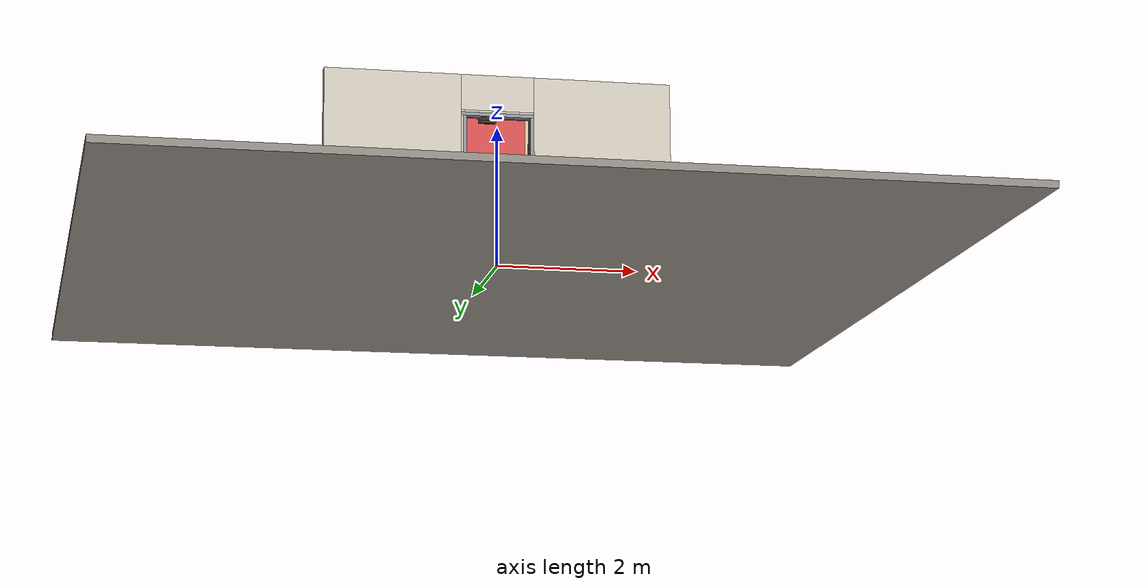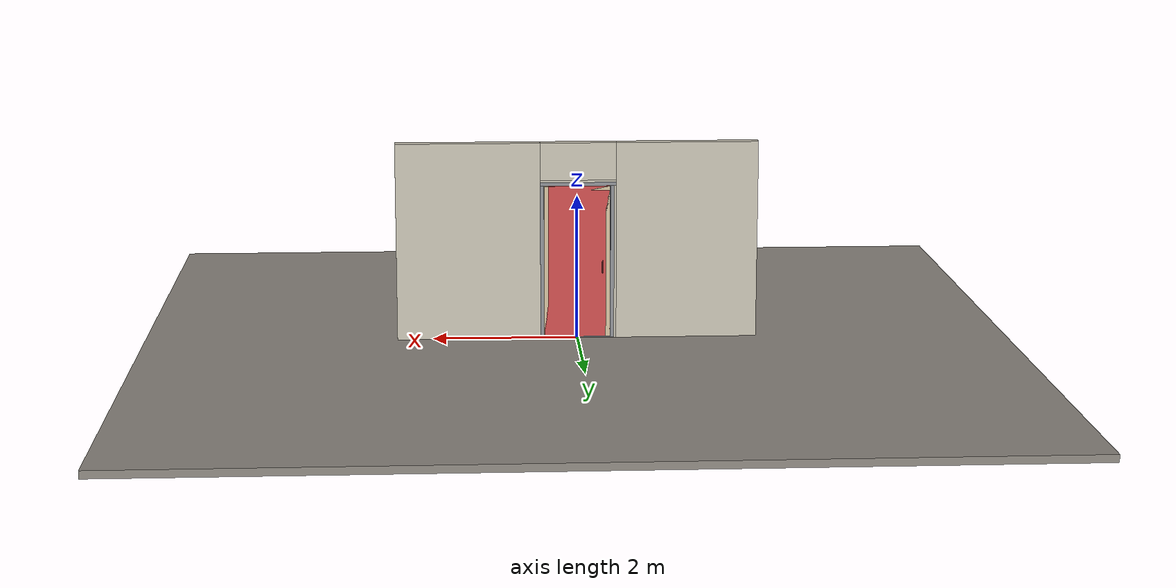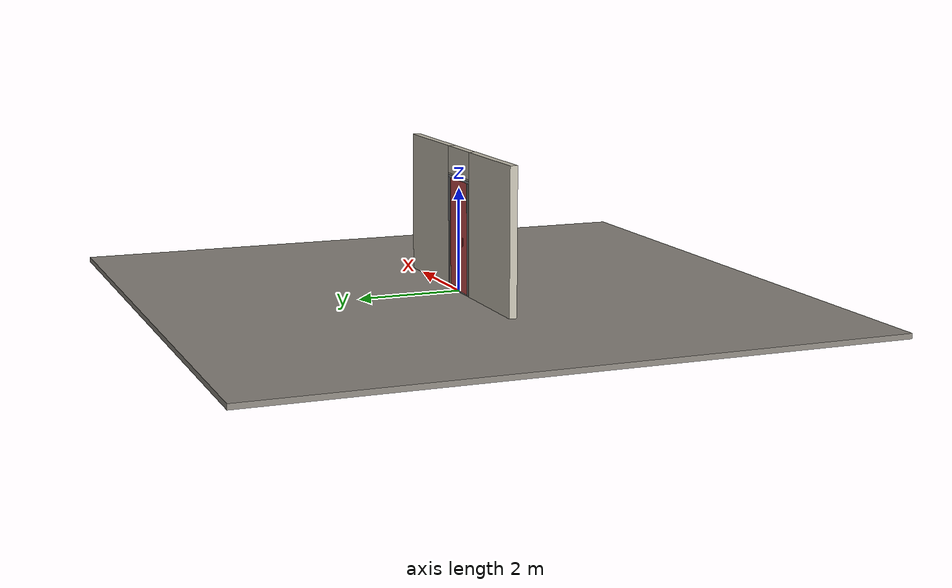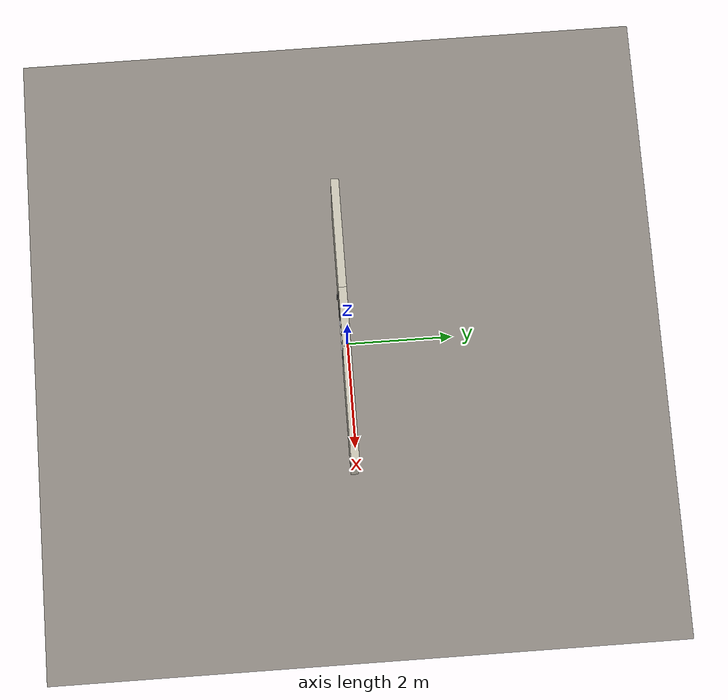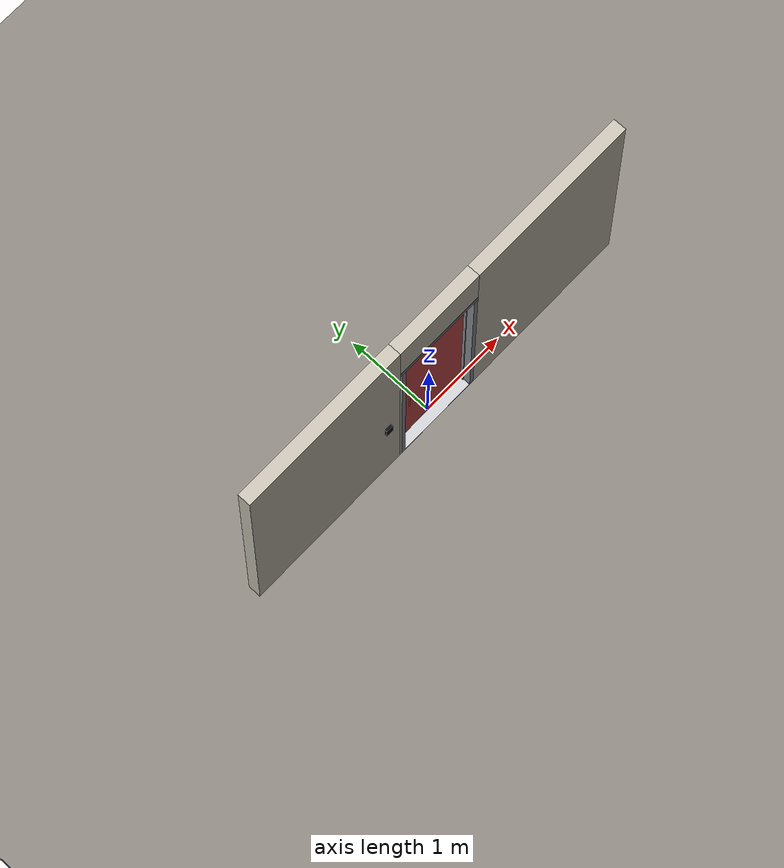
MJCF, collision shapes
<?xml version="1.0" ?>
<mujoco model="db0026_swing_single_full">
  <compiler angle="radian" meshdir="../../hardware" texturedir="../../textures" autolimits="true" inertiafromgeom="false"/>
  <option timestep="0.002" integrator="implicitfast" cone="elliptic" impratio="10" noslip_iterations="3">
    <flag multiccd="enable"/>
  </option>
  <size memory="16M"/>
  <default>
    <geom condim="4" solref="0.005 1" solimp="0.95 0.99 0.001"/>
    <joint solreflimit="0.005 1" solimplimit="0.95 0.99 0.001"/>
    <tendon solreflimit="0.005 1"/>
    <equality solref="0.002 1"/>
  </default>
  <visual>
    <headlight ambient="0.4 0.4 0.4" diffuse="0.7 0.7 0.7" specular="0.2 0.2 0.2"/>
    <quality shadowsize="4096"/>
    <map znear="0.01" zfar="60"/>
  </visual>
  <asset>
    <mesh name="hinge_a862eb1c73" file="hinge_a862eb1c73.obj"/>
    <mesh name="hinge_jamb_6edc213065" file="hinge_jamb_6edc213065.obj"/>
    <mesh name="pull_1e5d69a91a" file="pull_1e5d69a91a.obj"/>
    <material name="mat_floor" rgba="0.55 0.53 0.5 1" specular="0.2" shininess="0.15" reflectance="0"/>
    <material name="mat_wall" rgba="0.78 0.76 0.7 1" specular="0.2" shininess="0.1" reflectance="0"/>
    <material name="mat_leaf" rgba="0.82 0.75 0.62 1" specular="0.23" shininess="0.33" reflectance="0.02"/>
    <material name="mat_hinge" rgba="0.65 0.66 0.68 1" specular="0.74" shininess="0.5" reflectance="0.36"/>
    <material name="mat_op_stainless" rgba="0.75 0.76 0.77 1" specular="0.8" shininess="0.65" reflectance="0.4"/>
    <material name="mat_maglock" rgba="0.22 0.17 0.13 1" specular="0.8" shininess="0.6" reflectance="0.4"/>
    <material name="mat_frame" rgba="0.55 0.56 0.58 1" specular="0.8" shininess="0.55" reflectance="0.4"/>
    <material name="mat_threshold" rgba="0.8 0.81 0.83 1" specular="0.8" shininess="0.6" reflectance="0.4"/>
    <material name="mat_wallreader" rgba="0.05 0.05 0.05 1" specular="0.38" shininess="0.3" reflectance="0.12"/>
    <texture name="skybox" type="skybox" builtin="gradient" rgb1="0.6 0.7 0.85" rgb2="0.9 0.92 0.95" width="256" height="256"/>
  </asset>
  <worldbody>
    <light name="sun" pos="1.5 -2.5 4" dir="-0.3 0.5 -0.8" directional="true" diffuse="0.8 0.8 0.8" specular="0.3 0.3 0.3" castshadow="true"/>
    <light name="fill" pos="-1.5 2.5 3" dir="0.3 -0.5 -0.7" directional="true" diffuse="0.35 0.35 0.4" castshadow="false"/>
    <camera name="robot_view" pos="0 -2.690812 1.812087" xyaxes="1 0 0 0 0.26963 0.962964" fovy="52"/>
    <camera name="far_view" pos="0 2.584812 1.812087" xyaxes="-1 0 0 0 -0.26963 0.962964" fovy="52"/>
    <camera name="iso" pos="-2.004737 -2.268762 2.234138" xyaxes="0.741536 -0.670913 0 0.242917 0.268487 0.932151" fovy="46"/>
    <camera name="detail_handle" pos="-0.1715 -0.8725 1.296" xyaxes="0.97561 0.219512 0 -0.070934 0.315262 0.94635" fovy="38"/>
    <geom name="floor" type="box" size="6 6 0.05" pos="0 0 -0.05" material="mat_floor" group="0" contype="1" conaffinity="1" friction="0.8 0.005 0.0001" density="2400"/>
    <geom name="wall_left" type="box" size="0.97975 0.0725 1.3735" pos="-1.52025 -0.053 1.3735" material="mat_wall" group="0" contype="1" conaffinity="1" friction="0.6 0.005 0.0001" density="800"/>
    <geom name="wall_right" type="box" size="0.99475 0.0725 1.3735" pos="1.50525 -0.053 1.3735" material="mat_wall" group="0" contype="1" conaffinity="1" friction="0.6 0.005 0.0001" density="800"/>
    <geom name="wall_header" type="box" size="0.5255 0.0725 0.26" pos="-0.015 -0.053 2.487" material="mat_wall" group="0" contype="1" conaffinity="1" friction="0.6 0.005 0.0001" density="800"/>
    <geom name="hinge_0_jamb" type="mesh" mesh="hinge_jamb_6edc213065" pos="0.4575 0.0195 0.267" quat="0 0 0 1" material="mat_hinge" group="1" contype="0" conaffinity="0" density="7850"/>
    <geom name="hinge_1_jamb" type="mesh" mesh="hinge_jamb_6edc213065" pos="0.4575 0.0195 1.08" quat="0 0 0 1" material="mat_hinge" group="1" contype="0" conaffinity="0" density="7850"/>
    <geom name="hinge_2_jamb" type="mesh" mesh="hinge_jamb_6edc213065" pos="0.4575 0.0195 1.963" quat="0 0 0 1" material="mat_hinge" group="1" contype="0" conaffinity="0" density="7850"/>
    <geom name="leaf_maglock_body" type="box" size="0.125 0.025 0.02" pos="-0.1565 -0.0475 2.082" material="mat_maglock" group="0" contype="1" conaffinity="1" friction="0.6 0.005 0.0001" density="2000"/>
    <geom name="leaf_maglock_bracket" type="box" size="0.09 0.025 0.0225" pos="-0.1565 -0.0475 2.1245" material="mat_maglock" group="1" contype="0" conaffinity="0" density="7850"/>
    <geom name="jamb_hinge" type="box" size="0.025 0.0725 1.0735" pos="0.4855 -0.053 1.0735" material="mat_frame" group="0" contype="1" conaffinity="1" friction="0.6 0.005 0.0001" density="300"/>
    <geom name="jamb_strike" type="box" size="0.025 0.0725 1.0735" pos="-0.4855 -0.053 1.0735" material="mat_frame" group="0" contype="1" conaffinity="1" friction="0.6 0.005 0.0001" density="300"/>
    <geom name="stud_strike" type="box" size="0.015 0.0725 1.0735" pos="-0.5255 -0.053 1.0735" material="mat_wall" group="0" contype="1" conaffinity="1" friction="0.6 0.005 0.0001" density="500"/>
    <geom name="jamb_head" type="box" size="0.5255 0.0725 0.025" pos="-0.015 -0.053 2.172" material="mat_frame" group="0" contype="1" conaffinity="1" friction="0.6 0.005 0.0001" density="300"/>
    <geom name="head_stud" type="box" size="0.5255 0.0725 0.015" pos="-0.015 -0.053 2.212" material="mat_wall" group="0" contype="1" conaffinity="1" friction="0.6 0.005 0.0001" density="500"/>
    <geom name="stop_hinge" type="box" size="0.0055 0.016 1.0735" pos="0.455 -0.029 1.0735" material="mat_frame" group="0" contype="1" conaffinity="1" friction="0.6 0.005 0.0001" density="300"/>
    <geom name="stop_strike" type="box" size="0.0055 0.016 1.0735" pos="-0.455 -0.029 1.0735" material="mat_frame" group="0" contype="1" conaffinity="1" friction="0.6 0.005 0.0001" density="300"/>
    <geom name="stop_head" type="box" size="0.4605 0.016 0.0055" pos="0 -0.029 2.1415" material="mat_frame" group="0" contype="1" conaffinity="1" friction="0.6 0.005 0.0001" density="300"/>
    <geom name="threshold" type="box" size="0.5105 0.0725 0.0065" pos="0 -0.053 0.0065" material="mat_threshold" group="0" contype="1" conaffinity="1" friction="0.5 0.005 0.0001" density="2700"/>
    <geom name="wall_reader" type="box" size="0.04 0.015 0.06" pos="-0.7105 -0.1405 1.1" material="mat_wallreader" group="0" contype="1" conaffinity="1" friction="0.6 0.005 0.0001" density="1000"/>
    <site name="approach_point" pos="0 -1.5 0" quat="1 0 0 0" size="0.05" rgba="0.2 0.9 0.2 0.5" group="4"/>
    <site name="goal_point" pos="0 1.5 0" quat="1 0 0 0" size="0.05" rgba="0.2 0.9 0.2 0.5" group="4"/>
    <site name="door_plane_center" pos="0 0 1.0735" quat="1 0 0 0" size="0.02" rgba="0.2 0.9 0.2 0.5" group="4"/>
    <body name="leaf" pos="0.4605 0 0">
      <inertial pos="-0.460466 0.000031 1.086036" mass="89.134373" quat="-0.499808 0.499076 0.500778 0.500337" diaginertia="6.354648083 33.686806166 40.023520714"/>
      <joint name="leaf_hinge" type="hinge" axis="0 0 -1" pos="-0.003 0.0195 0" limited="true" range="0 1.570796" damping="0.318966" frictionloss="0.54477" armature="0.02"/>
      <geom name="leaf_slab_col" type="box" size="0.457 0.0125 1.063" pos="-0.46 0 1.08" material="mat_leaf" group="3" contype="1" conaffinity="1" rgba="0.8 0.3 0.3 0.25" friction="0.45 0.005 0.0001" density="1"/>
      <geom name="leaf_rail_b" type="box" size="0.457 0.0125 0.03" pos="-0.46 0 0.047" material="mat_leaf" group="1" contype="0" conaffinity="0" density="1"/>
      <geom name="leaf_rail_t" type="box" size="0.457 0.0125 0.03" pos="-0.46 0 2.113" material="mat_leaf" group="1" contype="0" conaffinity="0" density="1"/>
      <geom name="leaf_stile_h" type="box" size="0.03 0.0125 1.063" pos="-0.033 0 1.08" material="mat_leaf" group="1" contype="0" conaffinity="0" density="1"/>
      <geom name="leaf_stile_l" type="box" size="0.03 0.0125 1.063" pos="-0.887 0 1.08" material="mat_leaf" group="1" contype="0" conaffinity="0" density="1"/>
      <geom name="leaf_bar_0" type="cylinder" size="0.0095 1.003" pos="-0.129167 0 1.08" material="mat_leaf" group="1" contype="0" conaffinity="0" density="1"/>
      <geom name="leaf_bar_1" type="cylinder" size="0.0095 1.003" pos="-0.2615 0 1.08" material="mat_leaf" group="1" contype="0" conaffinity="0" density="1"/>
      <geom name="leaf_bar_2" type="cylinder" size="0.0095 1.003" pos="-0.393833 0 1.08" material="mat_leaf" group="1" contype="0" conaffinity="0" density="1"/>
      <geom name="leaf_bar_3" type="cylinder" size="0.0095 1.003" pos="-0.526167 0 1.08" material="mat_leaf" group="1" contype="0" conaffinity="0" density="1"/>
      <geom name="leaf_bar_4" type="cylinder" size="0.0095 1.003" pos="-0.6585 0 1.08" material="mat_leaf" group="1" contype="0" conaffinity="0" density="1"/>
      <geom name="leaf_bar_5" type="cylinder" size="0.0095 1.003" pos="-0.790833 0 1.08" material="mat_leaf" group="1" contype="0" conaffinity="0" density="1"/>
      <geom name="leaf_crossbar_33" type="box" size="0.397 0.01 0.02" pos="-0.46 0 0.71858" material="mat_leaf" group="1" contype="0" conaffinity="0" density="1"/>
      <geom name="leaf_crossbar_66" type="box" size="0.397 0.01 0.02" pos="-0.46 0 1.42016" material="mat_leaf" group="1" contype="0" conaffinity="0" density="1"/>
      <geom name="hinge_0" type="mesh" mesh="hinge_a862eb1c73" pos="-0.003 0.0195 0.267" quat="0 0 0 1" material="mat_hinge" group="1" contype="0" conaffinity="0" density="7850"/>
      <geom name="hinge_1" type="mesh" mesh="hinge_a862eb1c73" pos="-0.003 0.0195 1.08" quat="0 0 0 1" material="mat_hinge" group="1" contype="0" conaffinity="0" density="7850"/>
      <geom name="hinge_2" type="mesh" mesh="hinge_a862eb1c73" pos="-0.003 0.0195 1.963" quat="0 0 0 1" material="mat_hinge" group="1" contype="0" conaffinity="0" density="7850"/>
      <geom name="leaf_pull_n" type="mesh" mesh="pull_1e5d69a91a" pos="-0.812 -0.0125 1.016" quat="0 0 -0.707107 0.707107" material="mat_op_stainless" group="1" contype="0" conaffinity="0" density="3000"/>
      <geom name="leaf_pull_col_n" type="capsule" size="0.0095 0.08" pos="-0.812 -0.0725 1.016" material="mat_op_stainless" group="3" contype="1" conaffinity="1" rgba="0.8 0.3 0.3 0.25" friction="0.7 0.01 0.0001" density="3000"/>
      <geom name="leaf_pull_p" type="mesh" mesh="pull_1e5d69a91a" pos="-0.812 0.0125 1.016" quat="0 0 0.707107 0.707107" material="mat_op_stainless" group="1" contype="0" conaffinity="0" density="3000"/>
      <geom name="leaf_pull_col_p" type="capsule" size="0.0095 0.08" pos="-0.812 0.0725 1.016" material="mat_op_stainless" group="3" contype="1" conaffinity="1" rgba="0.8 0.3 0.3 0.25" friction="0.7 0.01 0.0001" density="3000"/>
      <geom name="leaf_maglock_armature" type="box" size="0.09 0.005 0.02" pos="-0.617 -0.0175 2.082" material="mat_maglock" group="1" contype="0" conaffinity="0" density="7800"/>
      <site name="leaf_pull_grip_n" pos="-0.812 -0.0725 1.016" quat="1 0 0 0" size="0.012" rgba="0.2 0.9 0.2 0.5" group="4"/>
      <site name="leaf_pull_grip_p" pos="-0.812 0.0725 1.016" quat="1 0 0 0" size="0.012" rgba="0.2 0.9 0.2 0.5" group="4"/>
      <site name="leaf_edge_mid" pos="-0.917 0 1.063" quat="1 0 0 0" size="0.02" rgba="0.2 0.9 0.2 0.5" group="4"/>
    </body>
  </worldbody>
  <equality>
    <weld name="leaf_maglock" body1="leaf" body2="world" active="true"/>
  </equality>
  <sensor>
    <jointpos name="leaf_hinge_pos" joint="leaf_hinge"/>
    <jointvel name="leaf_hinge_vel" joint="leaf_hinge"/>
  </sensor>
</mujoco>
